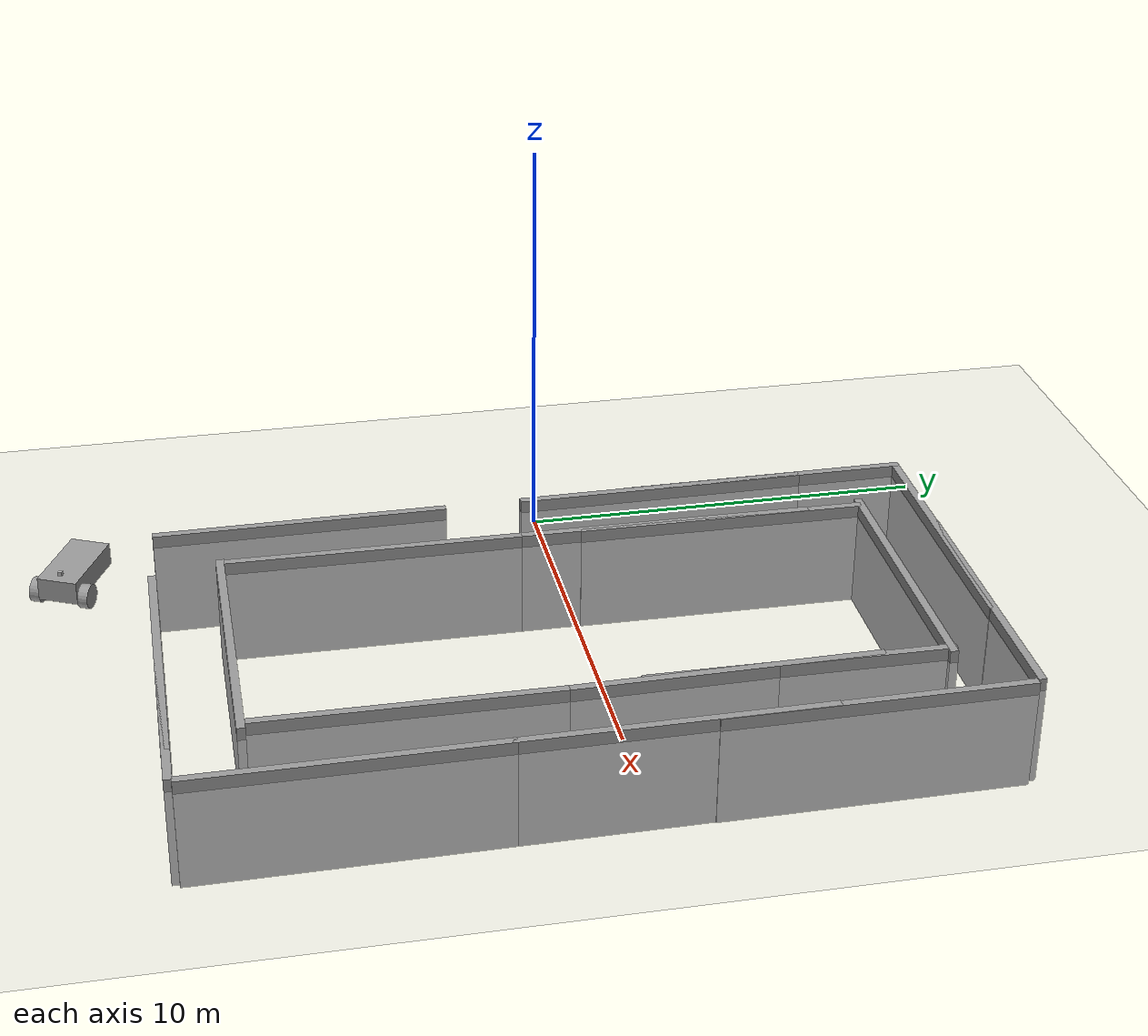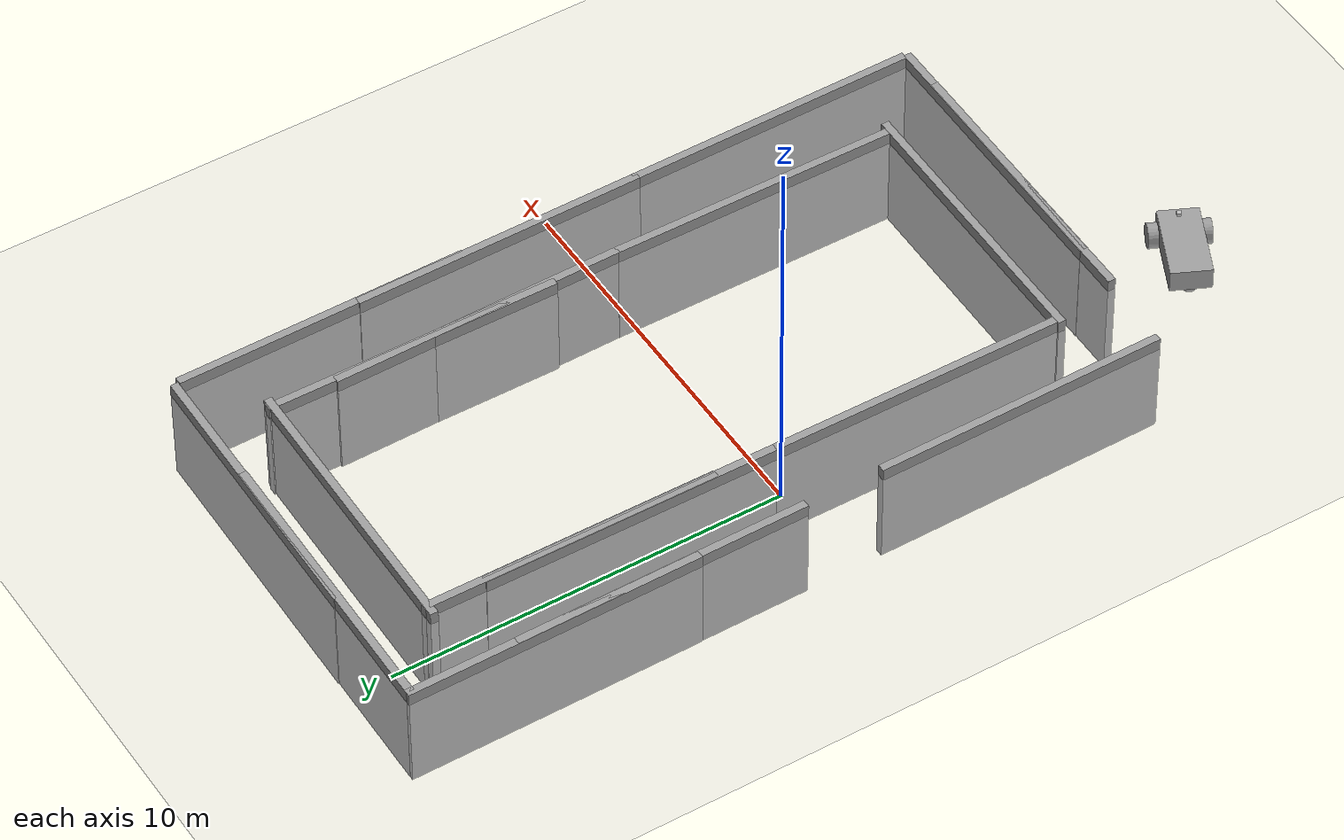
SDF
<sdf version="1.7">
 <world name="default">
  <light name="sun" type="directional">
   <pose>0 0 10 0 -0 0</pose>
   <diffuse>0.8 0.8 0.8 1</diffuse>
   <specular>0.2 0.2 0.2 1</specular>
   <attenuation>
    <range>1000</range>
    <constant>0.9</constant>
    <linear>0.01</linear>
    <quadratic>0.001</quadratic>
   </attenuation>
   <direction>-0.5 0.1 -0.9</direction>
   <spot><inner_angle>0</inner_angle><outer_angle>0</outer_angle><falloff>0</falloff></spot>
  </light>
  <model name="ground_plane">
   <static>1</static>
   <link name="link">
    <collision name="collision">
     <geometry><plane><normal>0 0 1</normal><size>100 100</size></plane></geometry>
     <surface><friction><ode><mu>100</mu><mu2>50</mu2></ode></friction></surface>
    </collision>
    <visual name="visual">
     <cast_shadows>0</cast_shadows>
     <geometry><plane><normal>0 0 1</normal><size>100 100</size></plane></geometry>
     <material>
      <script><uri>file://media/materials/scripts/gazebo.material</uri><name>Gazebo/Grey</name></script>
     </material>
    </visual>
   </link>
  </model>
  <gravity>0 0 -9.8</gravity>
  <magnetic_field>6e-06 2.3e-05 -4.2e-05</magnetic_field>
  <atmosphere type="adiabatic"/>
  <physics type="ode">
   <max_step_size>0.001</max_step_size>
   <real_time_factor>1</real_time_factor>
   <real_time_update_rate>1000</real_time_update_rate>
  </physics>
  <scene><ambient>0.4 0.4 0.4 1</ambient><background>0.7 0.7 0.7 1</background><shadows>1</shadows></scene>
  <audio><device>default</device></audio>
  <spherical_coordinates>
   <surface_model>EARTH_WGS84</surface_model>
   <latitude_deg>0</latitude_deg>
   <longitude_deg>0</longitude_deg>
   <elevation>0</elevation>
   <heading_deg>0</heading_deg>
  </spherical_coordinates>
  <model name="grey_wall">
   <static>1</static>
   <link name="link">
    <pose>0 0 1.4 0 -0 0</pose>
    <collision name="collision"><geometry><box><size>7.5 0.2 2.8</size></box></geometry></collision>
    <visual name="visual">
     <cast_shadows>0</cast_shadows>
     <geometry><box><size>7.5 0.2 2.8</size></box></geometry>
     <material>
      <script>
       <uri>model://grey_wall/materials/scripts</uri>
       <uri>model://grey_wall/materials/textures</uri>
       <name>vrc/grey_wall</name>
      </script>
     </material>
    </visual>
   </link>
   <pose>4.63673 8.32885 -2.50888 0 0 -0.013935</pose>
  </model>
  <model name="grey_wall_clone">
   <static>1</static>
   <link name="link">
    <pose>0 0 1.4 0 -0 0</pose>
    <collision name="collision"><geometry><box><size>7.5 0.2 2.8</size></box></geometry></collision>
    <visual name="visual">
     <cast_shadows>0</cast_shadows>
     <geometry><box><size>7.5 0.2 2.8</size></box></geometry>
     <material>
      <script>
       <uri>model://grey_wall/materials/scripts</uri>
       <uri>model://grey_wall/materials/textures</uri>
       <name>vrc/grey_wall</name>
      </script>
     </material>
    </visual>
   </link>
   <pose>4.65463 -8.17395 -2.50888 0 0 -0.013935</pose>
  </model>
  <model name="grey_wall_clone_clone">
   <static>1</static>
   <link name="link">
    <pose>0 0 1.4 0 -0 0</pose>
    <collision name="collision"><geometry><box><size>7.5 0.2 2.8</size></box></geometry></collision>
    <visual name="visual">
     <cast_shadows>0</cast_shadows>
     <geometry><box><size>7.5 0.2 2.8</size></box></geometry>
     <material>
      <script>
       <uri>model://grey_wall/materials/scripts</uri>
       <uri>model://grey_wall/materials/textures</uri>
       <name>vrc/grey_wall</name>
      </script>
     </material>
    </visual>
   </link>
   <pose>5.13386 -9.86071 -2.50888 0 0 -0.013935</pose>
  </model>
  <model name="grey_wall_clone_clone_0">
   <static>1</static>
   <link name="link">
    <pose>0 0 1.4 0 -0 0</pose>
    <collision name="collision"><geometry><box><size>7.5 0.2 2.8</size></box></geometry></collision>
    <visual name="visual">
     <cast_shadows>0</cast_shadows>
     <geometry><box><size>7.5 0.2 2.8</size></box></geometry>
     <material>
      <script>
       <uri>model://grey_wall/materials/scripts</uri>
       <uri>model://grey_wall/materials/textures</uri>
       <name>vrc/grey_wall</name>
      </script>
     </material>
    </visual>
   </link>
   <pose>6.29174 -9.86847 -2.50888 0 0 -0.013935</pose>
  </model>
  <model name="grey_wall_clone_clone_0_clone">
   <static>1</static>
   <link name="link">
    <pose>0 0 1.4 0 -0 0</pose>
    <collision name="collision"><geometry><box><size>7.5 0.2 2.8</size></box></geometry></collision>
    <visual name="visual">
     <cast_shadows>0</cast_shadows>
     <geometry><box><size>7.5 0.2 2.8</size></box></geometry>
     <material>
      <script>
       <uri>model://grey_wall/materials/scripts</uri>
       <uri>model://grey_wall/materials/textures</uri>
       <name>vrc/grey_wall</name>
      </script>
     </material>
    </visual>
   </link>
   <pose>2.98488 9.90822 -2.50888 0 0 -0.013935</pose>
  </model>
  <model name="grey_wall_clone_clone_0_clone_clone">
   <static>1</static>
   <link name="link">
    <pose>0 0 1.4 0 -0 0</pose>
    <collision name="collision"><geometry><box><size>7.5 0.2 2.8</size></box></geometry></collision>
    <visual name="visual">
     <cast_shadows>0</cast_shadows>
     <geometry><box><size>7.5 0.2 2.8</size></box></geometry>
     <material>
      <script>
       <uri>model://grey_wall/materials/scripts</uri>
       <uri>model://grey_wall/materials/textures</uri>
       <name>vrc/grey_wall</name>
      </script>
     </material>
    </visual>
   </link>
   <pose>6.14387 9.88228 -2.50888 0 0 -0.013935</pose>
  </model>
  <model name="grey_wall_clone_clone_1">
   <static>1</static>
   <link name="link">
    <pose>0 0 1.4 0 -0 0</pose>
    <collision name="collision"><geometry><box><size>7.5 0.2 2.8</size></box></geometry></collision>
    <visual name="visual">
     <cast_shadows>0</cast_shadows>
     <geometry><box><size>7.5 0.2 2.8</size></box></geometry>
     <material>
      <script>
       <uri>model://grey_wall/materials/scripts</uri>
       <uri>model://grey_wall/materials/textures</uri>
       <name>vrc/grey_wall</name>
      </script>
     </material>
    </visual>
   </link>
   <pose>1.07204 -4.29128 -2.50888 0 -0 1.56335</pose>
  </model>
  <model name="grey_wall_clone_clone_1_clone">
   <static>1</static>
   <link name="link">
    <pose>0 0 1.4 0 -0 0</pose>
    <collision name="collision"><geometry><box><size>7.5 0.2 2.8</size></box></geometry></collision>
    <visual name="visual">
     <cast_shadows>0</cast_shadows>
     <geometry><box><size>7.5 0.2 2.8</size></box></geometry>
     <material>
      <script>
       <uri>model://grey_wall/materials/scripts</uri>
       <uri>model://grey_wall/materials/textures</uri>
       <name>vrc/grey_wall</name>
      </script>
     </material>
    </visual>
   </link>
   <pose>1.12533 3.2078 -2.50888 0 -0 1.56335</pose>
  </model>
  <model name="grey_wall_clone_clone_1_clone_clone">
   <static>1</static>
   <link name="link">
    <pose>0 0 1.4 0 -0 0</pose>
    <collision name="collision"><geometry><box><size>7.5 0.2 2.8</size></box></geometry></collision>
    <visual name="visual">
     <cast_shadows>0</cast_shadows>
     <geometry><box><size>7.5 0.2 2.8</size></box></geometry>
     <material>
      <script>
       <uri>model://grey_wall/materials/scripts</uri>
       <uri>model://grey_wall/materials/textures</uri>
       <name>vrc/grey_wall</name>
      </script>
     </material>
    </visual>
   </link>
   <pose>1.15596 4.73113 -2.50888 0 -0 1.56335</pose>
  </model>
  <model name="grey_wall_clone_clone_1_clone_0">
   <static>1</static>
   <link name="link">
    <pose>0 0 1.4 0 -0 0</pose>
    <collision name="collision"><geometry><box><size>7.5 0.2 2.8</size></box></geometry></collision>
    <visual name="visual">
     <cast_shadows>0</cast_shadows>
     <geometry><box><size>7.5 0.2 2.8</size></box></geometry>
     <material>
      <script>
       <uri>model://grey_wall/materials/scripts</uri>
       <uri>model://grey_wall/materials/textures</uri>
       <name>vrc/grey_wall</name>
      </script>
     </material>
    </visual>
   </link>
   <pose>8.16612 -4.51199 -2.50888 0 -0 1.56335</pose>
  </model>
  <model name="grey_wall_clone_clone_1_clone_0_clone">
   <static>1</static>
   <link name="link">
    <pose>0 0 1.4 0 -0 0</pose>
    <collision name="collision"><geometry><box><size>7.5 0.2 2.8</size></box></geometry></collision>
    <visual name="visual">
     <cast_shadows>0</cast_shadows>
     <geometry><box><size>7.5 0.2 2.8</size></box></geometry>
     <material>
      <script>
       <uri>model://grey_wall/materials/scripts</uri>
       <uri>model://grey_wall/materials/textures</uri>
       <name>vrc/grey_wall</name>
      </script>
     </material>
    </visual>
   </link>
   <pose>8.14371 2.94531 -2.50888 0 -0 1.58467</pose>
  </model>
  <model name="grey_wall_clone_clone_1_clone_0_clone_0">
   <static>1</static>
   <link name="link">
    <pose>0 0 1.4 0 -0 0</pose>
    <collision name="collision"><geometry><box><size>7.5 0.2 2.8</size></box></geometry></collision>
    <visual name="visual">
     <cast_shadows>0</cast_shadows>
     <geometry><box><size>7.5 0.2 2.8</size></box></geometry>
     <material>
      <script>
       <uri>model://grey_wall/materials/scripts</uri>
       <uri>model://grey_wall/materials/textures</uri>
       <name>vrc/grey_wall</name>
      </script>
     </material>
    </visual>
   </link>
   <pose>8.13121 4.66125 -2.50888 0 -0 1.56335</pose>
  </model>
  <model name="grey_wall_clone_clone_1_clone_1">
   <static>1</static>
   <link name="link">
    <pose>0 0 1.4 0 -0 0</pose>
    <collision name="collision"><geometry><box><size>7.5 0.2 2.8</size></box></geometry></collision>
    <visual name="visual">
     <cast_shadows>0</cast_shadows>
     <geometry><box><size>7.5 0.2 2.8</size></box></geometry>
     <material>
      <script>
       <uri>model://grey_wall/materials/scripts</uri>
       <uri>model://grey_wall/materials/textures</uri>
       <name>vrc/grey_wall</name>
      </script>
     </material>
    </visual>
   </link>
   <pose>-0.657147 -5.94275 -2.50888 0 -0 1.57779</pose>
  </model>
  <model name="grey_wall_clone_clone_1_clone_1_clone">
   <static>1</static>
   <link name="link">
    <pose>0 0 1.4 0 -0 0</pose>
    <collision name="collision"><geometry><box><size>7.5 0.2 2.8</size></box></geometry></collision>
    <visual name="visual">
     <cast_shadows>0</cast_shadows>
     <geometry><box><size>7.5 0.2 2.8</size></box></geometry>
     <material>
      <script>
       <uri>model://grey_wall/materials/scripts</uri>
       <uri>model://grey_wall/materials/textures</uri>
       <name>vrc/grey_wall</name>
      </script>
     </material>
    </visual>
   </link>
   <pose>-0.714432 3.52501 -2.50888 0 -0 1.57779</pose>
  </model>
  <model name="grey_wall_clone_clone_1_clone_1_clone_clone">
   <static>1</static>
   <link name="link">
    <pose>0 0 1.4 0 -0 0</pose>
    <collision name="collision"><geometry><box><size>7.5 0.2 2.8</size></box></geometry></collision>
    <visual name="visual">
     <cast_shadows>0</cast_shadows>
     <geometry><box><size>7.5 0.2 2.8</size></box></geometry>
     <material>
      <script>
       <uri>model://grey_wall/materials/scripts</uri>
       <uri>model://grey_wall/materials/textures</uri>
       <name>vrc/grey_wall</name>
      </script>
     </material>
    </visual>
   </link>
   <pose>-0.744259 6.30812 -2.50888 0 -0 1.57641</pose>
  </model>
  <model name="grey_wall_clone_clone_1_clone_1_clone_0">
   <static>1</static>
   <link name="link">
    <pose>0 0 1.4 0 -0 0</pose>
    <collision name="collision"><geometry><box><size>7.5 0.2 2.8</size></box></geometry></collision>
    <visual name="visual">
     <cast_shadows>0</cast_shadows>
     <geometry><box><size>7.5 0.2 2.8</size></box></geometry>
     <material>
      <script>
       <uri>model://grey_wall/materials/scripts</uri>
       <uri>model://grey_wall/materials/textures</uri>
       <name>vrc/grey_wall</name>
      </script>
     </material>
    </visual>
   </link>
   <pose>10.0193 -6.09416 -2.50888 0 -0 1.57779</pose>
  </model>
  <model name="grey_wall_clone_clone_1_clone_1_clone_1">
   <static>1</static>
   <link name="link">
    <pose>0 0 1.4 0 -0 0</pose>
    <collision name="collision"><geometry><box><size>7.5 0.2 2.8</size></box></geometry></collision>
    <visual name="visual">
     <cast_shadows>0</cast_shadows>
     <geometry><box><size>7.5 0.2 2.8</size></box></geometry>
     <material>
      <script>
       <uri>model://grey_wall/materials/scripts</uri>
       <uri>model://grey_wall/materials/textures</uri>
       <name>vrc/grey_wall</name>
      </script>
     </material>
    </visual>
   </link>
   <pose>9.96643 1.29292 -2.50888 0 -0 1.57779</pose>
  </model>
  <model name="grey_wall_clone_clone_1_clone_1_clone_2">
   <static>1</static>
   <link name="link">
    <pose>0 0 1.4 0 -0 0</pose>
    <collision name="collision"><geometry><box><size>7.5 0.2 2.8</size></box></geometry></collision>
    <visual name="visual">
     <cast_shadows>0</cast_shadows>
     <geometry><box><size>7.5 0.2 2.8</size></box></geometry>
     <material>
      <script>
       <uri>model://grey_wall/materials/scripts</uri>
       <uri>model://grey_wall/materials/textures</uri>
       <name>vrc/grey_wall</name>
      </script>
     </material>
    </visual>
   </link>
   <pose>9.95817 5.96274 -2.50888 0 -0 1.57779</pose>
  </model>
  <model name="follower_vehicle">
   <pose>1.3008 -11.708 0.325006 -0 -1.2e-05 -0.444108</pose>
   <link name="chassis">
    <pose>-0.151427 -0 0.175 0 -0 0</pose>
    <inertial>
     <mass>1.14395</mass>
     <inertia>
      <ixx>0.126164</ixx>
      <ixy>0</ixy>
      <ixz>0</ixz>
      <iyy>0.416519</iyy>
      <iyz>0</iyz>
      <izz>0.481014</izz>
     </inertia>
    </inertial>
    <visual name="visual">
     <geometry><box><size>2.01142 1 0.568726</size></box></geometry>
     <material>
      <script><uri>file://media/materials/scripts/gazebo.material</uri><name>Gazebo/Grey</name></script>
     </material>
    </visual>
    <collision name="collision">
     <geometry><box><size>2.01142 1 0.568726</size></box></geometry>
     <surface>
      <friction><ode><mu>1</mu><mu2>1</mu2><fdir1>0 0 0</fdir1><slip1>0</slip1><slip2>0</slip2></ode></friction>
      <bounce><restitution_coefficient>0</restitution_coefficient><threshold>1e+06</threshold></bounce>
      <contact>
       <collide_without_contact>0</collide_without_contact>
       <collide_without_contact_bitmask>1</collide_without_contact_bitmask>
       <collide_bitmask>1</collide_bitmask>
       <ode>
        <soft_cfm>0</soft_cfm>
        <soft_erp>0.2</soft_erp>
        <kp>1e+13</kp>
        <kd>1</kd>
        <max_vel>0.01</max_vel>
        <min_depth>0</min_depth>
       </ode>
      </contact>
     </surface>
    </collision>
   </link>
   <link name="wheel_1">
    <pose>0.554283 0.625029 -0.025 1.5707 -0 0</pose>
    <inertial>
     <mass>2</mass>
     <inertia><ixx>0.145833</ixx><ixy>0</ixy><ixz>0</ixz><iyy>0.145833</iyy><iyz>0</iyz><izz>0.125</izz></inertia>
    </inertial>
    <visual name="visual">
     <geometry><cylinder><radius>0.3</radius><length>0.25</length></cylinder></geometry>
     <material>
      <script><uri>file://media/materials/scripts/gazebo.material</uri><name>Gazebo/Grey</name></script>
     </material>
    </visual>
    <collision name="collision">
     <geometry><cylinder><radius>0.3</radius><length>0.25</length></cylinder></geometry>
     <surface>
      <friction><ode><mu>1</mu><mu2>1</mu2><fdir1>0 0 0</fdir1><slip1>0</slip1><slip2>0</slip2></ode></friction>
      <bounce><restitution_coefficient>0</restitution_coefficient><threshold>1e+06</threshold></bounce>
      <contact>
       <collide_without_contact>0</collide_without_contact>
       <collide_without_contact_bitmask>1</collide_without_contact_bitmask>
       <collide_bitmask>1</collide_bitmask>
       <ode>
        <soft_cfm>0</soft_cfm>
        <soft_erp>0.2</soft_erp>
        <kp>1e+13</kp>
        <kd>1</kd>
        <max_vel>0.01</max_vel>
        <min_depth>0</min_depth>
       </ode>
      </contact>
     </surface>
    </collision>
   </link>
   <link name="wheel_2">
    <pose>0.554282 -0.625029 -0.025 1.5707 -0 0</pose>
    <inertial>
     <mass>2</mass>
     <inertia><ixx>0.145833</ixx><ixy>0</ixy><ixz>0</ixz><iyy>0.145833</iyy><iyz>0</iyz><izz>0.125</izz></inertia>
    </inertial>
    <visual name="visual">
     <geometry><cylinder><radius>0.3</radius><length>0.25</length></cylinder></geometry>
     <material>
      <script><uri>file://media/materials/scripts/gazebo.material</uri><name>Gazebo/Grey</name></script>
     </material>
    </visual>
    <collision name="collision">
     <geometry><cylinder><radius>0.3</radius><length>0.25</length></cylinder></geometry>
     <surface>
      <friction><ode><mu>1</mu><mu2>1</mu2><fdir1>0 0 0</fdir1><slip1>0</slip1><slip2>0</slip2></ode></friction>
      <bounce><restitution_coefficient>0</restitution_coefficient><threshold>1e+06</threshold></bounce>
      <contact>
       <collide_without_contact>0</collide_without_contact>
       <collide_without_contact_bitmask>1</collide_without_contact_bitmask>
       <collide_bitmask>1</collide_bitmask>
       <ode>
        <soft_cfm>0</soft_cfm>
        <soft_erp>0.2</soft_erp>
        <kp>1e+13</kp>
        <kd>1</kd>
        <max_vel>0.01</max_vel>
        <min_depth>0</min_depth>
       </ode>
      </contact>
     </surface>
    </collision>
   </link>
   <link name="caster">
    <pose>-0.957138 -0 -0.125 0 -0 0</pose>
    <inertial>
     <mass>1</mass>
     <inertia><ixx>0.1</ixx><ixy>0</ixy><ixz>0</ixz><iyy>0.1</iyy><iyz>0</iyz><izz>0.1</izz></inertia>
    </inertial>
    <visual name="visual">
     <geometry><sphere><radius>0.2</radius></sphere></geometry>
     <material>
      <script><uri>file://media/materials/scripts/gazebo.material</uri><name>Gazebo/Grey</name></script>
     </material>
    </visual>
    <collision name="collision">
     <geometry><sphere><radius>0.2</radius></sphere></geometry>
     <surface>
      <friction><ode><mu>1</mu><mu2>1</mu2><fdir1>0 0 0</fdir1><slip1>0</slip1><slip2>0</slip2></ode></friction>
      <bounce><restitution_coefficient>0</restitution_coefficient><threshold>1e+06</threshold></bounce>
      <contact>
       <collide_without_contact>0</collide_without_contact>
       <collide_without_contact_bitmask>1</collide_without_contact_bitmask>
       <collide_bitmask>1</collide_bitmask>
       <ode>
        <soft_cfm>0</soft_cfm>
        <soft_erp>0.2</soft_erp>
        <kp>1e+13</kp>
        <kd>1</kd>
        <max_vel>0.01</max_vel>
        <min_depth>0</min_depth>
       </ode>
      </contact>
     </surface>
    </collision>
   </link>
   <model name="depth_camera">
    <link name="link">
     <pose>0.05 0.05 0.05 0 -0 0</pose>
     <inertial>
      <mass>0.1</mass>
      <inertia>
       <ixx>0.000166667</ixx>
       <iyy>0.000166667</iyy>
       <izz>0.000166667</izz>
       <ixy>0</ixy>
       <ixz>0</ixz>
       <iyz>0</iyz>
      </inertia>
     </inertial>
     <collision name="collision"><geometry><box><size>0.1 0.1 0.1</size></box></geometry></collision>
     <visual name="visual"><geometry><box><size>0.1 0.1 0.1</size></box></geometry></visual>
     <sensor name="camera" type="depth">
      <camera name="depth">
       <horizontal_fov>1.047</horizontal_fov>
       <image><width>320</width><height>240</height></image>
       <clip><near>0.1</near><far>100</far></clip>
      </camera>
      <always_on>1</always_on>
      <update_rate>30</update_rate>
      <visualize>1</visualize>
     </sensor>
    </link>
    <pose>0.569632 -0.03223 0.502056 0 -0 0</pose>
   </model>
   <joint name="chassis_wheel_1_revolute" type="revolute">
    <parent>chassis</parent>
    <child>wheel_1</child>
    <axis>
     <xyz>0 0 1</xyz>
     <limit>
      <lower>-1.79769e+308</lower>
      <upper>1.79769e+308</upper>
      <effort>-1</effort>
      <velocity>-1</velocity>
     </limit>
     <dynamics>
      <spring_reference>0</spring_reference>
      <spring_stiffness>0</spring_stiffness>
      <damping>0</damping>
      <friction>0</friction>
     </dynamics>
    </axis>
    <physics>
     <ode><limit><cfm>0</cfm><erp>0.2</erp></limit><suspension><cfm>0</cfm><erp>0.2</erp></suspension></ode>
    </physics>
   </joint>
   <joint name="chassis_wheel_2_revolute" type="revolute">
    <parent>chassis</parent>
    <child>wheel_2</child>
    <axis>
     <xyz>0 0 1</xyz>
     <limit>
      <lower>-1.79769e+308</lower>
      <upper>1.79769e+308</upper>
      <effort>-1</effort>
      <velocity>-1</velocity>
     </limit>
     <dynamics>
      <spring_reference>0</spring_reference>
      <spring_stiffness>0</spring_stiffness>
      <damping>0</damping>
      <friction>0</friction>
     </dynamics>
    </axis>
    <physics>
     <ode><limit><cfm>0</cfm><erp>0.2</erp></limit><suspension><cfm>0</cfm><erp>0.2</erp></suspension></ode>
    </physics>
   </joint>
   <joint name="chassis_caster_ball" type="ball">
    <parent>chassis</parent>
    <child>caster</child>
    <physics>
     <ode><limit><cfm>0</cfm><erp>0.2</erp></limit><suspension><cfm>0</cfm><erp>0.2</erp></suspension></ode>
    </physics>
   </joint>
   <joint name="chassis_depth_camera_link_fixed" type="fixed">
    <parent>chassis</parent>
    <child>depth_camera::link</child>
    <physics>
     <ode><limit><cfm>0</cfm><erp>0.2</erp></limit><suspension><cfm>0</cfm><erp>0.2</erp></suspension></ode>
    </physics>
   </joint>
   <static>0</static>
   <plugin name="follower" filename="libFollowerPlugin.so"/>
  </model>
 </world>
</sdf>
